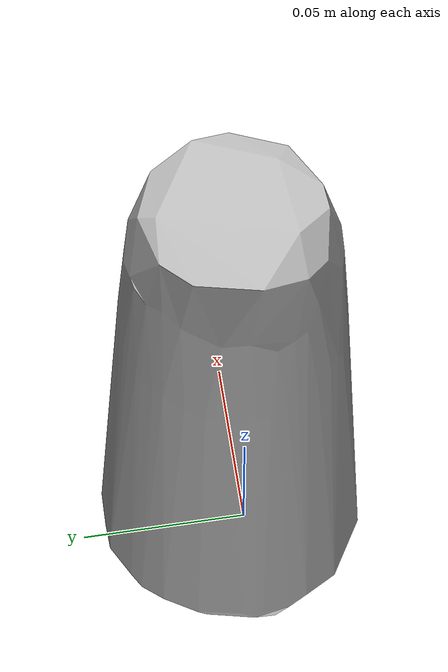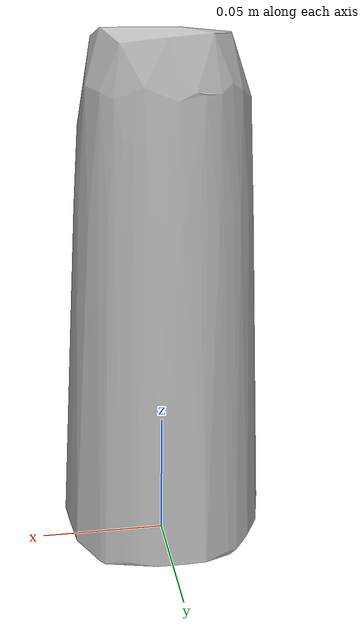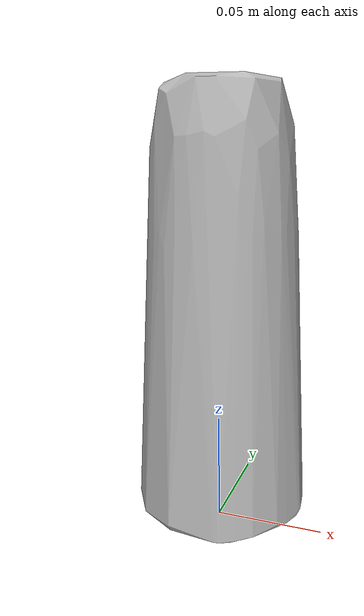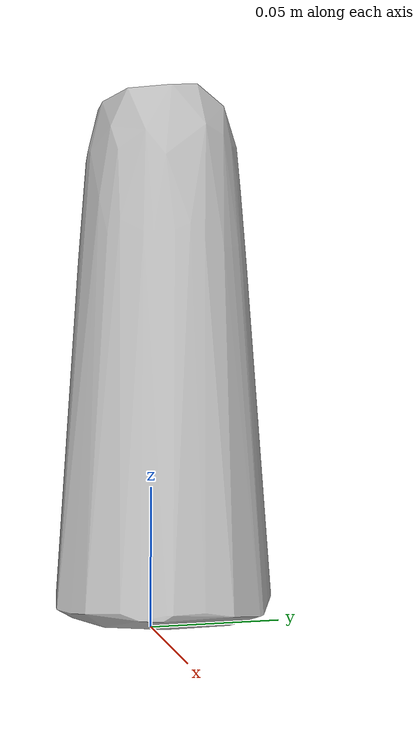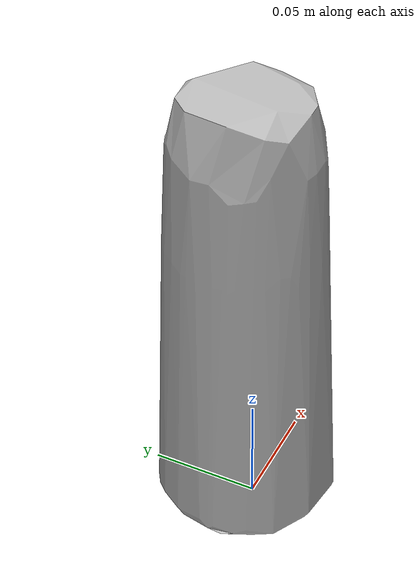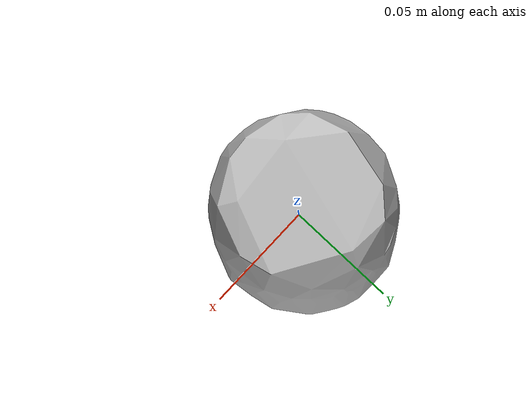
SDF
<?xml version='1.0'?>
<sdf version="1.4">
  <model name="krylon_matte_finish">
    <static>false</static>
    <link name="link">
      <inertial>
        <pose>0.0007259923772664866 0.003974052921071868 0.09325092246635104 0.0021436989972709037 0.0013563148462440106 0.43318120159110435</pose>
        <mass>0.0727164681872302</mass>
        <inertia>
          <ixx>0.00023944489583199914</ixx>
          <ixy>-9.072680157140309e-21</ixy>
          <ixz>6.279374746993481e-20</ixz>
          <iyy>0.00023939062778167335</iyy>
          <iyz>1.535651025253181e-19</iyz>
          <izz>4.4614851569958934e-05</izz>
        </inertia>
      </inertial>
      <collision name="collision">
        <geometry>
          <mesh>
            <!-- Use a downsampled mesh for collisions -->
            <uri>model:///krylon_matte_finish/krylon_matte_finish_250_collision.obj</uri>
	        </mesh>
        </geometry>
        <surface>
      </surface>
      </collision>
      <visual name="visual">
        <geometry>
          <mesh>
            <uri>model:///krylon_matte_finish/optimized_tsdf_texture_mapped_mesh.obj</uri>
	        </mesh>
        </geometry>
        <material>
          <script>
            <uri>model:///krylon_matte_finish/krylon_matte_finish.material</uri>
            <name>krylon_matte_finish</name>
          </script>
        </material>
      </visual>
    </link>
  </model>
</sdf>
